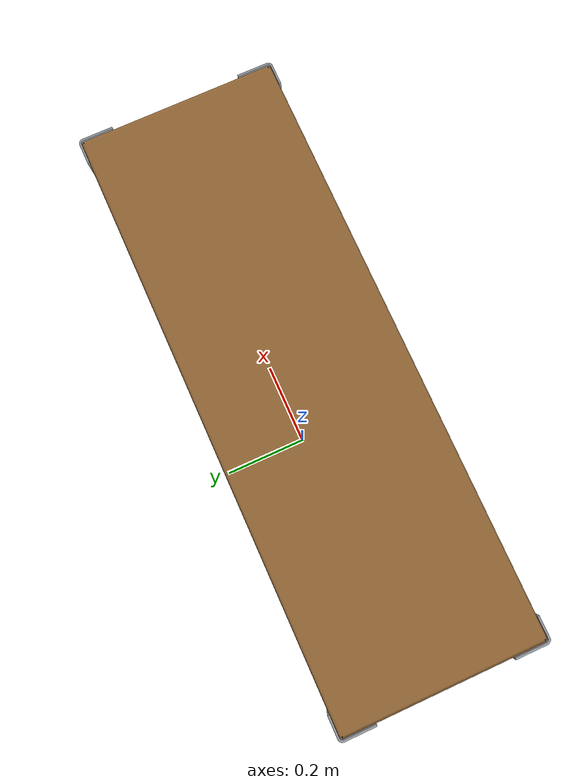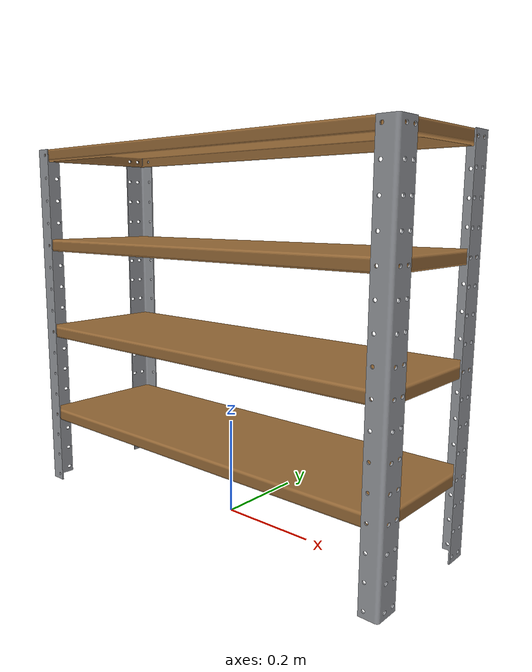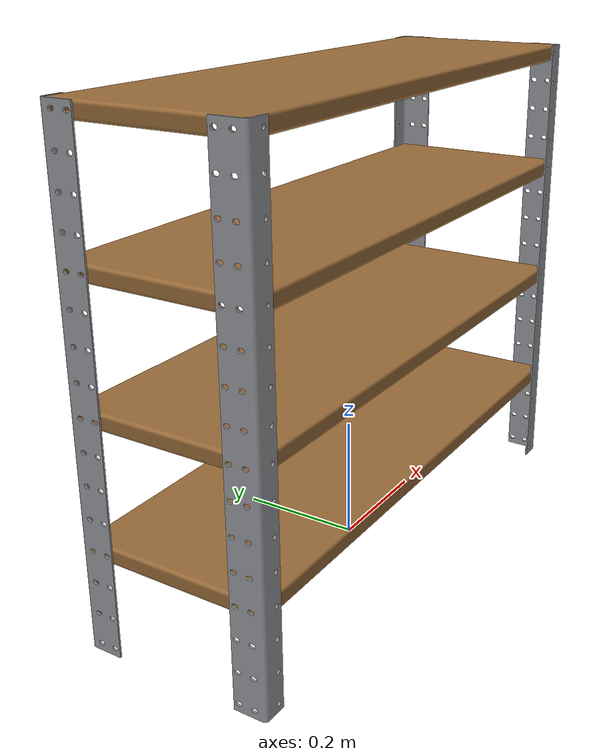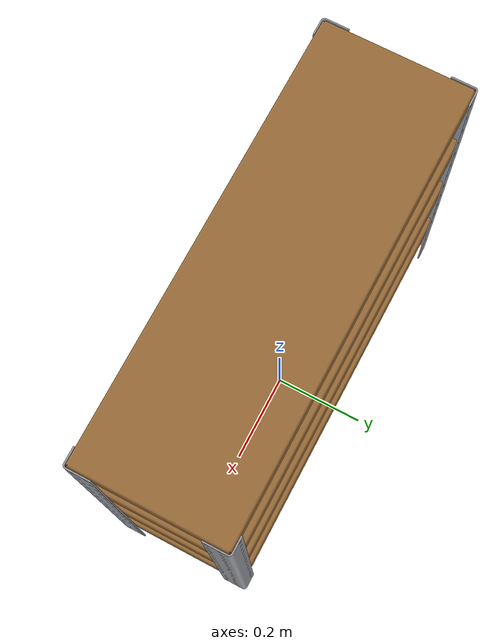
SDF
<?xml version="1.0" ?>
<sdf version="1.9">
  <model name="storage_rack">
    <static>true</static>
    <link name="link">
      <!-- Single box collision sized to the real mesh's bounding box
           (0.906 x 0.305 x 0.775 m) - cheap for physics, the visual
           carries the real CAD detail. -->
      <collision name="collision">
        <pose>0 0 0.3875 0 0 0</pose>
        <geometry><box><size>0.906 0.305 0.775</size></box></geometry>
      </collision>

      <visual name="legs">
        <geometry><mesh><uri>meshes/rack_legs.stl</uri><scale>0.001 0.001 0.001</scale></mesh></geometry>
        <material><ambient>0.55 0.56 0.58 1</ambient><diffuse>0.6 0.61 0.63 1</diffuse><specular>0.3 0.3 0.3 1</specular></material>
      </visual>
      <visual name="shelves">
        <geometry><mesh><uri>meshes/rack_shelves.stl</uri><scale>0.001 0.001 0.001</scale></mesh></geometry>
        <material><ambient>0.55 0.38 0.2 1</ambient><diffuse>0.6 0.42 0.22 1</diffuse><specular>0.1 0.1 0.1 1</specular></material>
      </visual>
    </link>
  </model>
</sdf>
